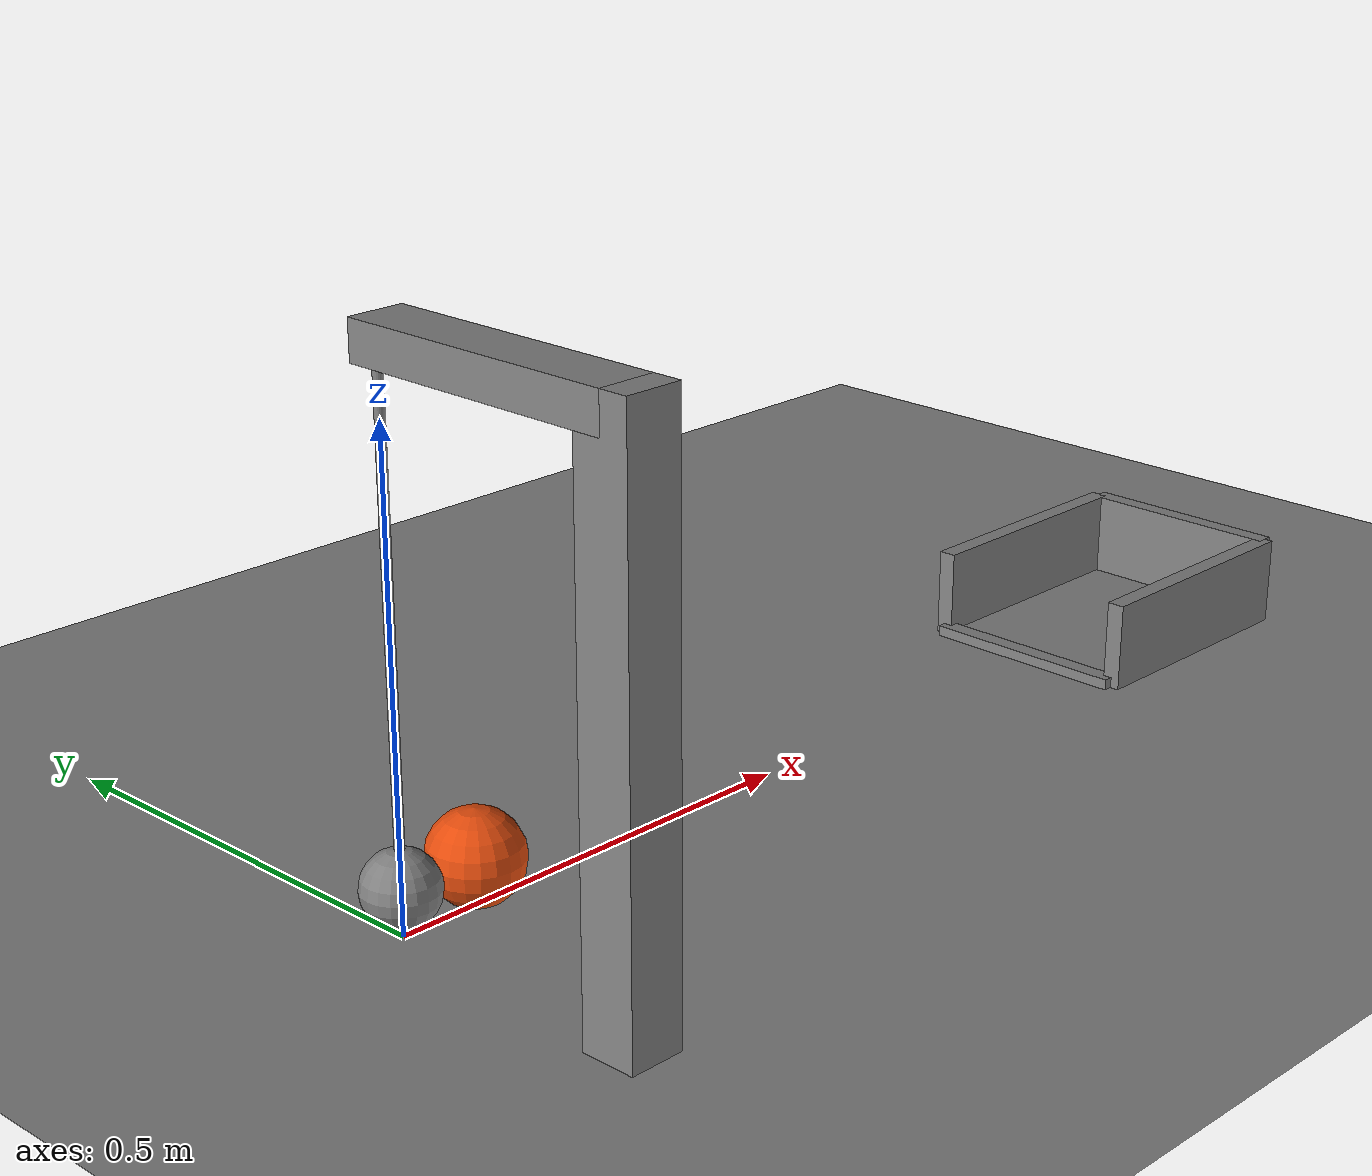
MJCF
<mujoco model="pendulum_knocks_ball_into_cup">
  <compiler angle="radian"/>
  <option timestep="0.002"/>
  <worldbody>
    <geom name="floor" type="plane" size="6 6 0.1" friction="0.8 0.005 0.0005"/>
    <geom name="pendulum_stand_arm" type="box" pos="0 -0.15 0.575" size="0.03 0.15 0.02"/>
    <geom name="pendulum_stand_post" type="box" pos="0 -0.3 0.2975" size="0.03 0.03 0.2975"/>
    <body name="pendulum" pos="0 0 0.55">
      <joint name="pivot" type="hinge" pos="0 0 0" axis="0 1 0"/>
      <geom name="pendulum_bob" type="sphere" pos="0 0 -0.5" size="0.04" mass="0.4"/>
      <geom name="pendulum_rod" type="capsule" size="0.005" fromto="0 0 0 0 0 -0.46" mass="0.05"/>
    </body>
    <body name="ball" pos="0.092 0 0.05">
      <freejoint/>
      <geom name="ball" type="sphere" pos="0 0 0" size="0.05" mass="0.15" condim="6" friction="0.8 0.005 0.0005" rgba="0.9 0.3 0.05 1"/>
    </body>
    <body name="cup">
      <geom name="cup_base" type="box" pos="1.092 0 0.0025" size="0.15 0.12 0.0025"/>
      <geom name="cup_near_wall" type="box" pos="0.942 0 0.006" size="0.01 0.12 0.006"/>
      <geom name="cup_far_wall" type="box" pos="1.242 0 0.05" size="0.01 0.12 0.05"/>
      <geom name="cup_left_wall" type="box" pos="1.092 0.12 0.05" size="0.15 0.01 0.05"/>
      <geom name="cup_right_wall" type="box" pos="1.092 -0.12 0.05" size="0.15 0.01 0.05"/>
    </body>
  </worldbody>
  <keyframe>
    <key name="start" qpos="0.663225 0.092 0 0.05 1 0 0 0" qvel="0 0 0 0 0 0 0"/>
  </keyframe>
</mujoco>
